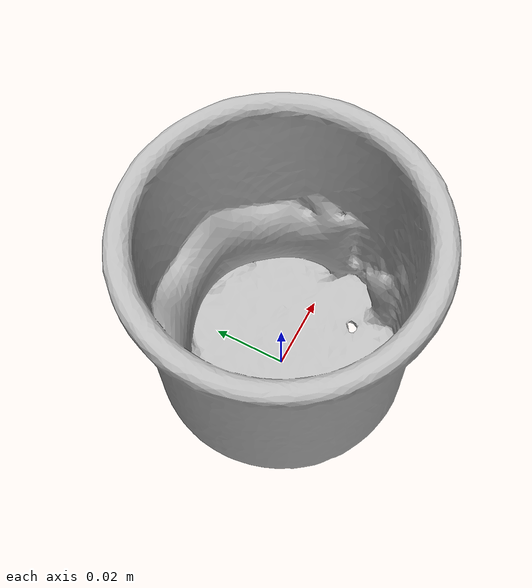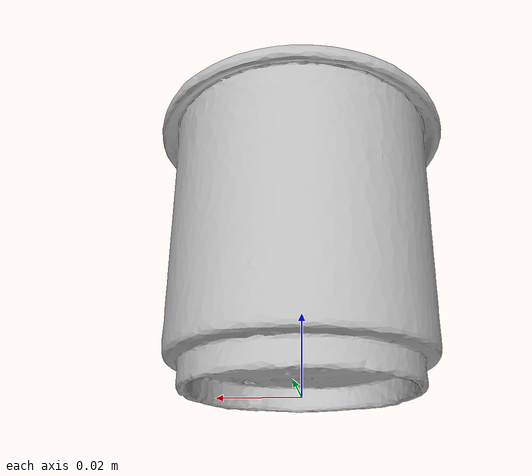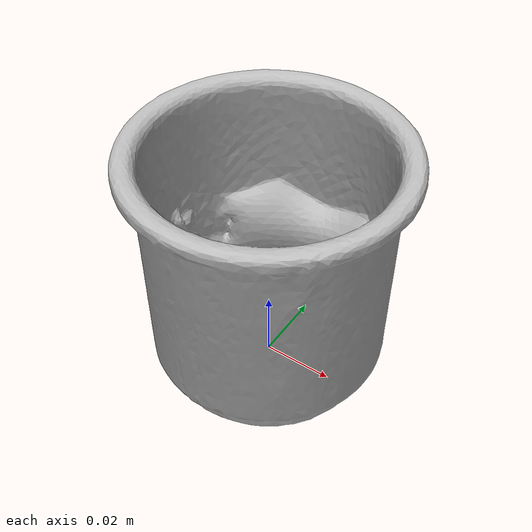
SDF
<?xml version="1.0" ?>
<sdf version='1.8'>
  <model name='ycb_065-e_cups'>
    <link name='body'>
      <inertial>
        <mass>0.026</mass>
        <pose>0.00200898106 0.0043663303 0.0313176304 0 0 0</pose>
        <inertia>
          <ixx>2.22049222627e-05</ixx>
          <ixy>2.80109596609e-07</ixy>
          <ixz>4.96885288874e-07</ixz>
          <iyy>2.2268222882e-05</iyy>
          <iyz>1.13426601048e-06</iyz>
          <izz>2.27554613842e-05</izz>
        </inertia>
      </inertial>
      <visual name='ycb_065-e_cups_visual'>
        <pose>0.021161 0.078046 0.000922 0 0 0</pose>
        <geometry>
          <mesh>
            <uri>model://ycb_065-e_cups/meshes/textured.dae</uri>
          </mesh>
        </geometry>
      </visual>
      <collision name='ycb_065-e_cups_collision'>
        <pose>0.021161 0.078046 0.000922 0 0 0</pose>
        <geometry>
          <mesh>
            <uri>model://ycb_065-e_cups/meshes/nontextured.stl</uri>
          </mesh>
        </geometry>
        <max_contacts>10</max_contacts>
        <surface>
          <contact>
            <ode>
              <kp>1e15</kp>
              <kd>1e13</kd>
            </ode>
          </contact>
        </surface>
      </collision>
    </link>
  </model>
</sdf>
